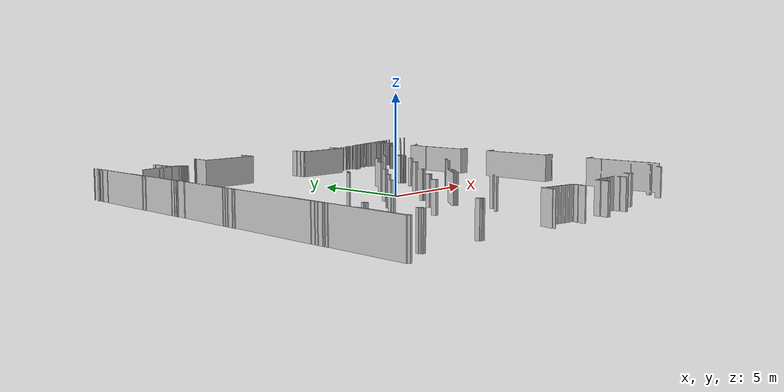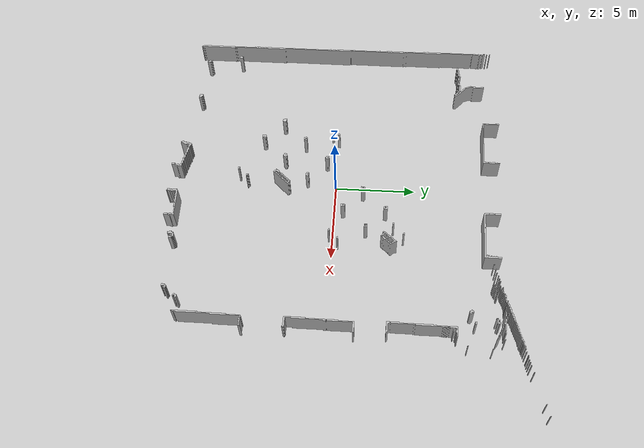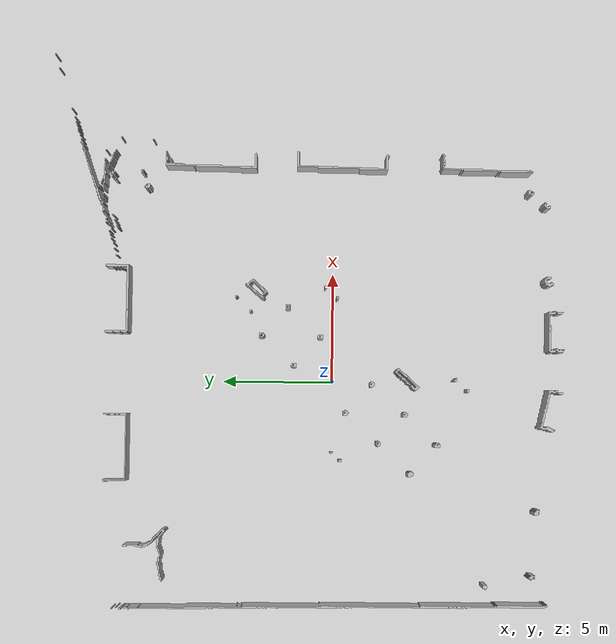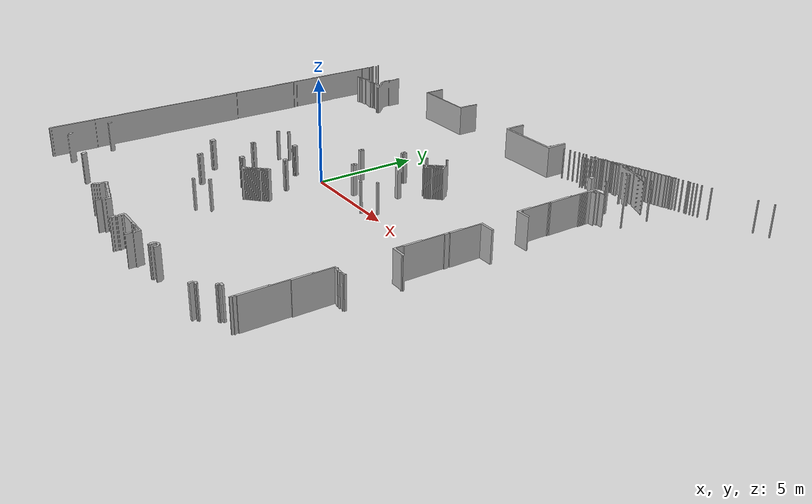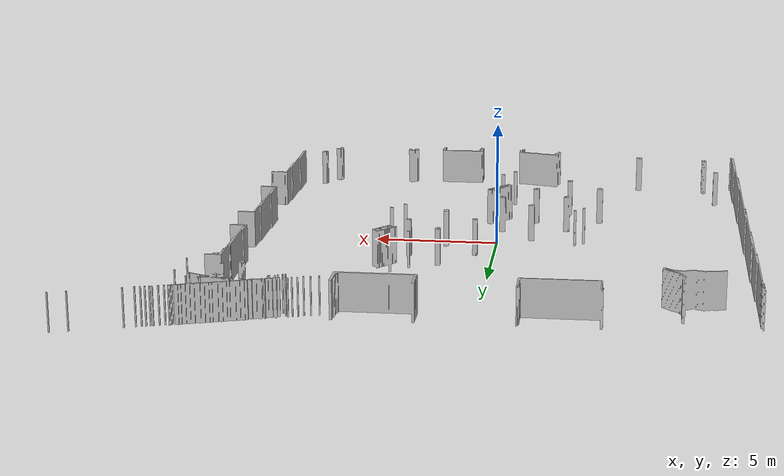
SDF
<?xml version="1.0" ?>
<sdf version="1.4">
  <model name="playground">
    <link name="link">
      <inertial>
        <mass>15</mass>
        <inertia>
          <ixx>0.0</ixx>
          <ixy>0.0</ixy>
          <ixz>0.0</ixz>
          <iyy>0.0</iyy>
          <iyz>0.0</iyz>
          <izz>0.0</izz>
        </inertia>
      </inertial>
      <collision name="collision">
        <pose>0 0 0 0 0 0</pose>
        <geometry>
          <mesh>
            <uri>model://playground/meshes/playground.stl</uri>
          </mesh>
        </geometry>
      </collision>
      <visual name="visual">
        <pose>0 0 0 0 0 0</pose>
        <geometry>
          <mesh>
            <uri>model://playground/meshes/playground.stl</uri>
          </mesh>
        </geometry>
      </visual>
    </link>
    <static>1</static>
  </model>
</sdf>
